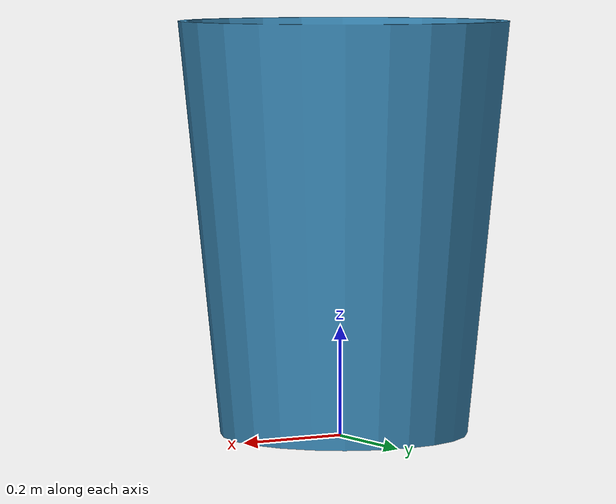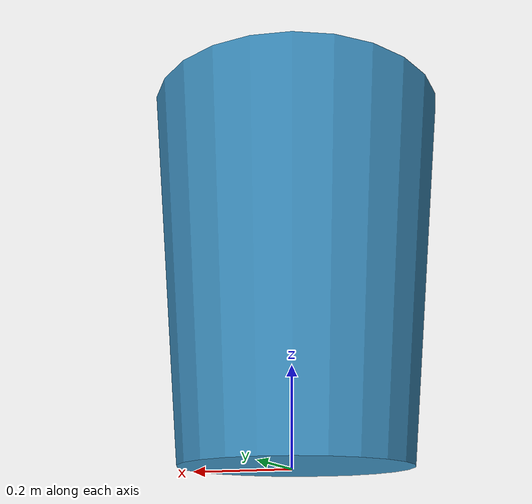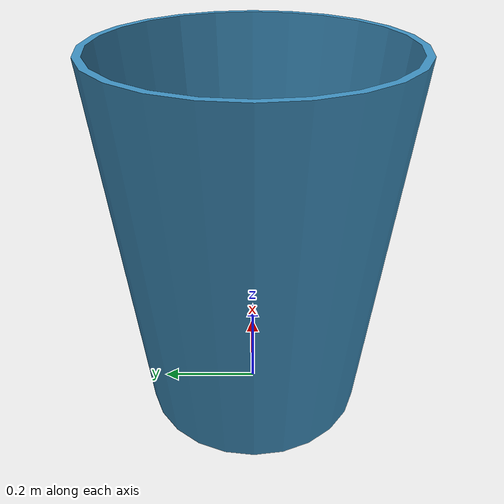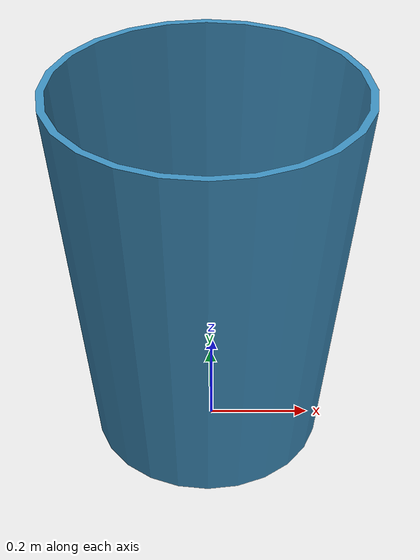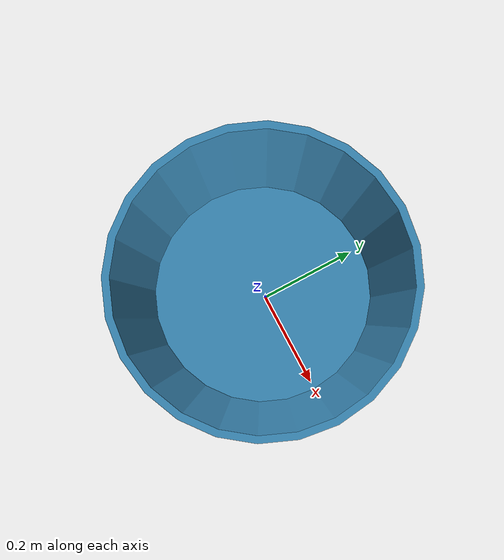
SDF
<?xml version='1.0'?>
<sdf version='1.5'>
  <model name='trash_bin'>
    <link name='link'>
      <inertial>
        <pose frame=''>0 0 0 0 0 0</pose>
        <mass>0.1</mass>
      </inertial>

        <visual name='visual'>
        <pose frame=''>0 0 0 0 0 0</pose>
        <geometry>
          <mesh>
            <uri>model://trash_bin/meshes/outer.dae</uri>
            <scale>1.5 1.5 1.5</scale>
          </mesh>
        </geometry>
        <material>
          <lighting>1</lighting>
            <ambient>0.235 0.556 0.741 1</ambient>
          <diffuse>0.235 0.556 0.741 1</diffuse>
          <specular>0.01 0.01 0.01 1</specular>
          <emissive>0 0 0 1</emissive>
          <shader type='vertex'>
            <normal_map>__default__</normal_map>
          </shader>
        </material>
        <cast_shadows>1</cast_shadows>
        <transparency>0</transparency>
      </visual>
      <collision name='collision'>
        <laser_retro>0</laser_retro>
        <pose frame=''>0 0 0 0 0 0</pose>
        <geometry>
          <mesh>
            <uri>model://trash_bin/meshes/outer.dae</uri>
            <scale>1.5 1.5 1.5</scale>
          </mesh>
        </geometry>
       </collision>
    </link>
    <static>0</static>
    <allow_auto_disable>1</allow_auto_disable>
  </model>
</sdf>
